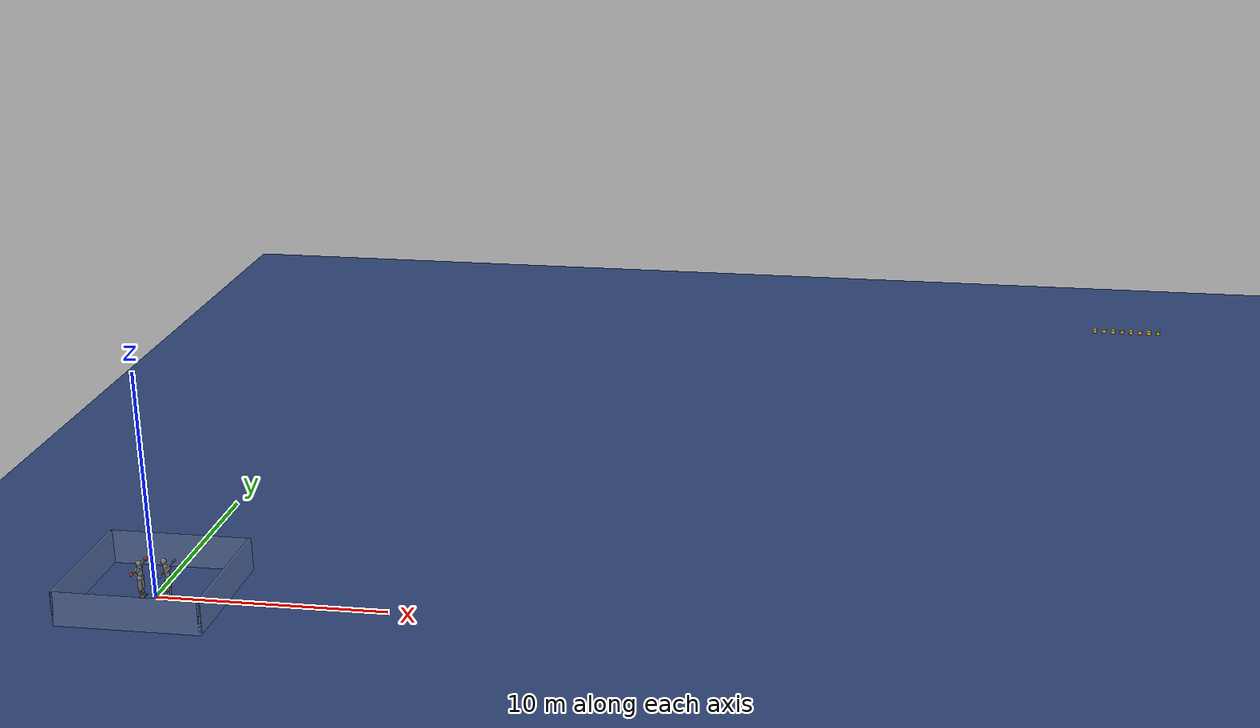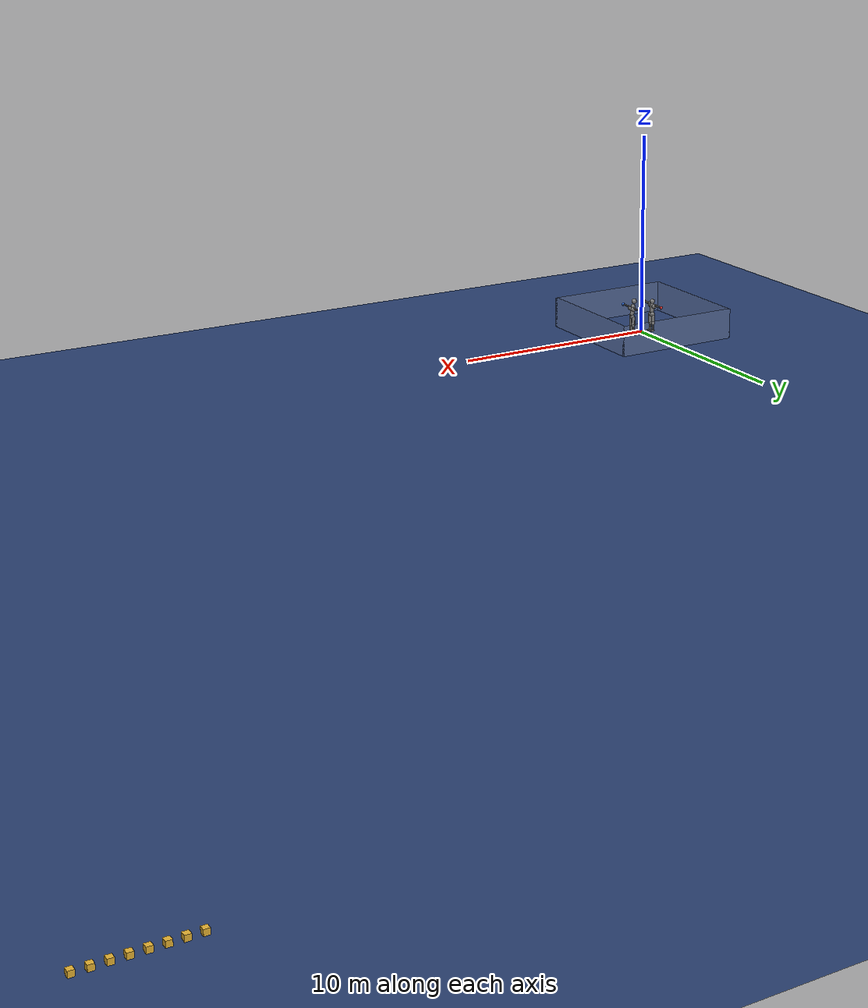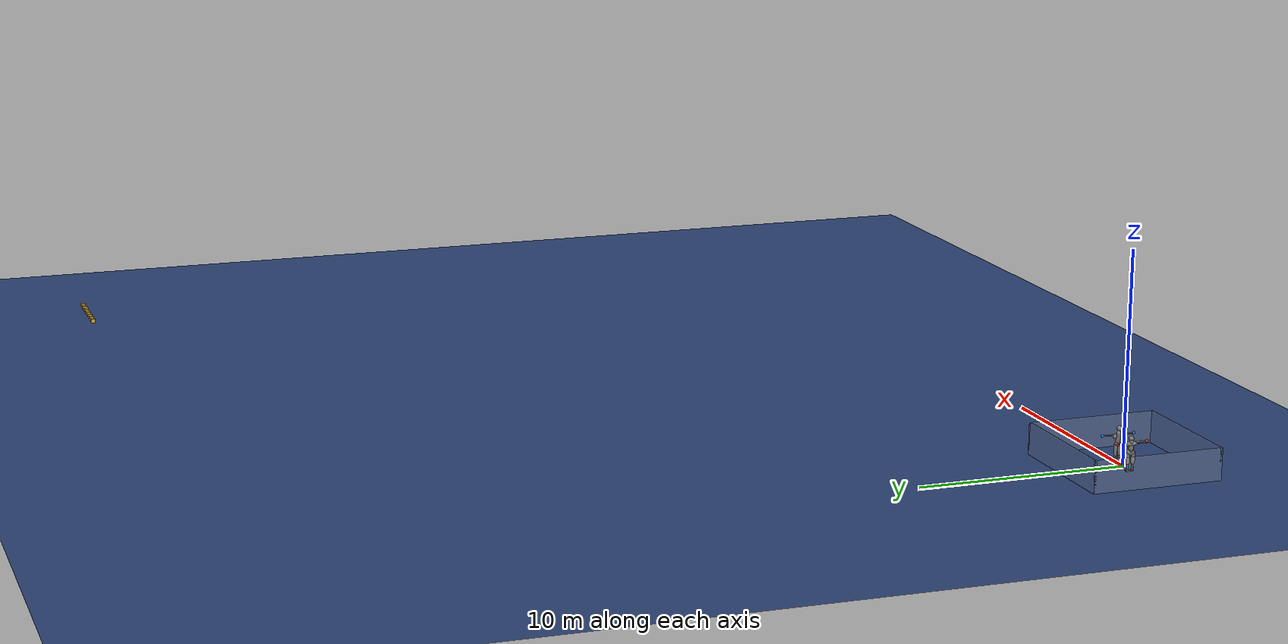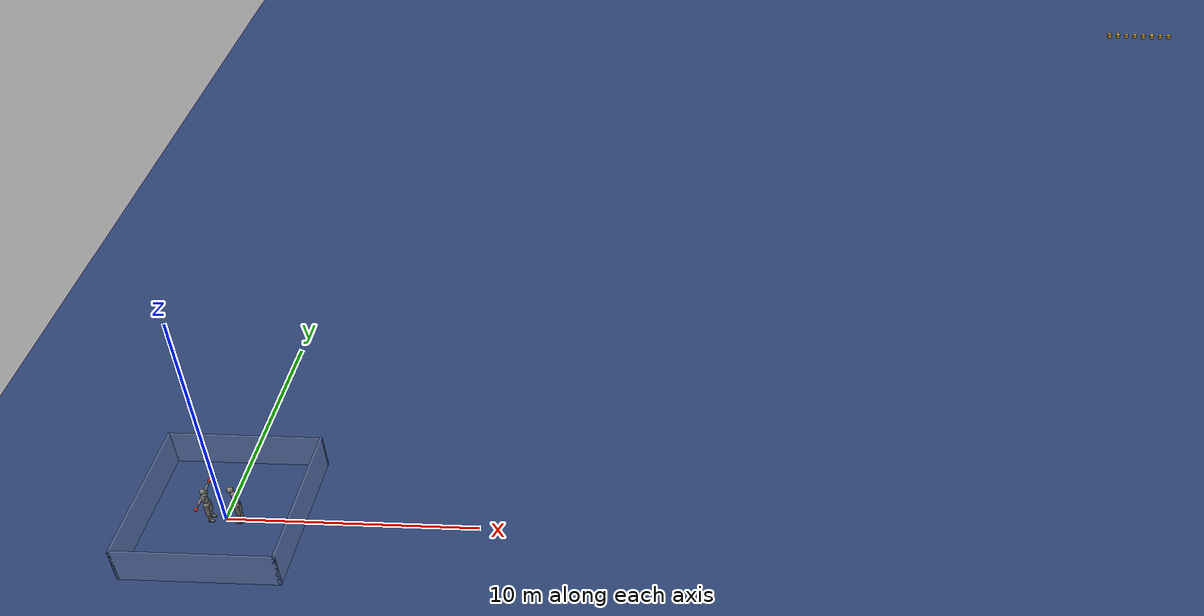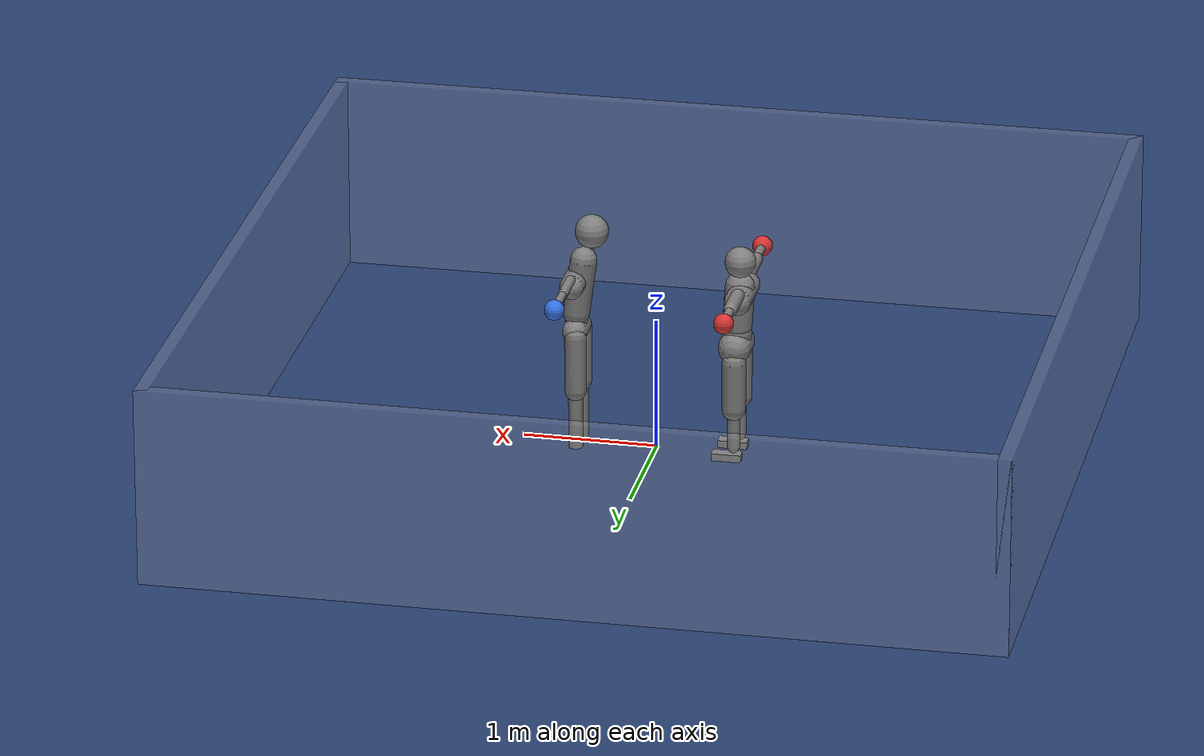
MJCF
<mujoco model="lilmatt_vs_zombie_spar">
  <compiler angle="degree" inertiafromgeom="true" autolimits="true"/>
  <option timestep="0.005" iterations="10" ls_iterations="10" integrator="implicitfast">
    <flag eulerdamp="disable"/>
  </option>
  <default>
    <geom contype="1" conaffinity="1" condim="3" friction="1.0 0.005 0.0001" density="1000" margin="0"/>
    <joint limited="true"/>
    <position ctrllimited="true"/>
  </default>
  <asset>
    <texture name="grid" type="2d" builtin="checker" rgb1=".18 .28 .48" rgb2=".14 .22 .40" width="300" height="300"/>
    <material name="grid" texture="grid" texrepeat="6 6" reflectance="0"/>
  </asset>
  <worldbody>
    <light pos="0 0 5" dir="0 0 -1" directional="true"/>
    <geom name="floor" type="plane" size="0 0 0.05" material="grid" friction="1.0 0.005 0.0001"/>
    <geom name="rope_n" type="box" pos="0.0000 3.1000 0.7500" size="3.1500 0.0500 0.7500" rgba="0.8 0.8 0.8 0.15"/>
    <geom name="rope_s" type="box" pos="0.0000 -3.1000 0.7500" size="3.1500 0.0500 0.7500" rgba="0.8 0.8 0.8 0.15"/>
    <geom name="rope_e" type="box" pos="3.1000 0.0000 0.7500" size="0.0500 3.1500 0.7500" rgba="0.8 0.8 0.8 0.15"/>
    <geom name="rope_w" type="box" pos="-3.1000 0.0000 0.7500" size="0.0500 3.1500 0.7500" rgba="0.8 0.8 0.8 0.15"/>
    <body name="a_pelvis" pos="-0.6000 0.0000 0.8672" quat="1.00000 0 0 0.00000">
      <freejoint name="a_root"/>
      <geom name="a_pelvis_geom" type="capsule" fromto="0.0000 -0.0700 0.0000 0.0000 0.0700 0.0000" size="0.1228" mass="6.8132" />
      <geom name="a_pelvis_up" type="capsule" fromto="0.0000 0.0000 0.0000 -0.0066 0.0000 0.1058" size="0.1105" mass="4.6036" />
      <body name="a_torso" pos="-0.0066 0.0000 0.1258">
        <joint name="a_abdomen_z" type="hinge" axis="0 0 1" range="-45 45" damping="0.5" armature="0.08" stiffness="0"/>
        <joint name="a_abdomen_y" type="hinge" axis="0 1 0" range="-60 30" damping="0.5" armature="0.08" stiffness="0"/>
        <joint name="a_abdomen_x" type="hinge" axis="1 0 0" range="-35 35" damping="0.5" armature="0.08" stiffness="0"/>
        <geom name="a_torso_geom" type="capsule" fromto="0.0000 0.0000 0.0200 -0.0181 0.0000 0.3354" size="0.1100" mass="28.5420" />
        <geom name="a_chest_geom" type="capsule" fromto="-0.0347 -0.1786 0.2850 -0.0347 0.1786 0.2850" size="0.0990" mass="0.5"/>
        <geom name="a_head_geom" type="sphere" pos="-0.0217 0.0000 0.5289" size="0.1155" mass="6.5124" />
        <body name="a_upper_arm_l" pos="-0.0434 0.2232 0.3563">
          <joint name="a_shoulder_x_l" type="hinge" axis="1 0 0" range="-170 30" damping="0.5" armature="0.03" stiffness="0"/>
          <joint name="a_shoulder_z_l" type="hinge" axis="0 0 1" range="-110 110" damping="0.5" armature="0.03" stiffness="0"/>
          <geom name="a_upper_arm_l_geom" type="capsule" fromto="0.0000 0.0000 0.0000 0.0000 0.2758 0.0000" size="0.0508" mass="2.2512" />
          <body name="a_forearm_l" pos="0.0000 0.2758 0.0000">
            <joint name="a_elbow_l" type="hinge" axis="0 0 1" range="-150 0" damping="0.5" armature="0.02" stiffness="0"/>
            <geom name="a_forearm_l_geom" type="capsule" fromto="0.0000 0.0000 0.0000 0.0000 0.1970 0.0000" size="0.0332" mass="1.2864" />
            <geom name="a_glove_l" type="sphere" pos="0.0000 0.2645 0.0000" size="0.0750" mass="0.7654" rgba="0.85 0.2 0.2 1"/>
          </body>
        </body>
        <body name="a_upper_arm_r" pos="-0.0434 -0.2232 0.3563">
          <joint name="a_shoulder_x_r" type="hinge" axis="1 0 0" range="-30 170" damping="0.5" armature="0.03" stiffness="0"/>
          <joint name="a_shoulder_z_r" type="hinge" axis="0 0 1" range="-110 110" damping="0.5" armature="0.03" stiffness="0"/>
          <geom name="a_upper_arm_r_geom" type="capsule" fromto="0.0000 0.0000 0.0000 0.0000 -0.2758 0.0000" size="0.0508" mass="2.2512" />
          <body name="a_forearm_r" pos="0.0000 -0.2758 0.0000">
            <joint name="a_elbow_r" type="hinge" axis="0 0 1" range="0 150" damping="0.5" armature="0.02" stiffness="0"/>
            <geom name="a_forearm_r_geom" type="capsule" fromto="0.0000 0.0000 0.0000 0.0000 -0.1970 0.0000" size="0.0332" mass="1.2864" />
            <geom name="a_glove_r" type="sphere" pos="0.0000 -0.2645 0.0000" size="0.0750" mass="0.7654" rgba="0.85 0.2 0.2 1"/>
          </body>
        </body>
      </body>
      <body name="a_thigh_l" pos="-0.0061 0.1244 -0.0919">
        <joint name="a_hip_x_l" type="hinge" axis="1 0 0" range="-40 40" damping="0.5" armature="0.1" stiffness="0"/>
        <joint name="a_hip_z_l" type="hinge" axis="0 0 1" range="-35 35" damping="0.5" armature="0.1" stiffness="0"/>
        <joint name="a_hip_y_l" type="hinge" axis="0 1 0" range="-120 30" damping="0.5" armature="0.1" stiffness="0"/>
        <geom name="a_thigh_l_geom" type="capsule" fromto="0.0000 0.0000 0.0000 0.0000 0.0000 -0.3718" size="0.0895" mass="8.0400" />
        <body name="a_shin_l" pos="0.0000 0.0000 -0.3718">
          <joint name="a_knee_l" type="hinge" axis="0 1 0" range="0 150" damping="0.5" armature="0.1" stiffness="0"/>
          <geom name="a_shin_l_geom" type="capsule" fromto="0.0000 0.0000 0.0000 0.0000 0.0000 -0.3036" size="0.0462" mass="3.7386" />
          <body name="a_foot_l" pos="0.0000 0.0000 -0.3036">
            <joint name="a_ankle_y_l" type="hinge" axis="0 1 0" range="-20 50" damping="0.5" armature="0.03" stiffness="0"/>
            <joint name="a_ankle_x_l" type="hinge" axis="1 0 0" range="-25 25" damping="0.5" armature="0.03" stiffness="0"/>
            <geom name="a_foot_l_geom" type="box" pos="0.0506 0.0000 -0.0797" size="0.1100 0.0450 0.0280" mass="1.1658" friction="1.0 0.005 0.0001"/>
            <site name="a_foot_l_site" pos="0.0506 0.0000 -0.0797" size="0.01"/>
          </body>
        </body>
      </body>
      <body name="a_thigh_r" pos="-0.0061 -0.1244 -0.0919">
        <joint name="a_hip_x_r" type="hinge" axis="1 0 0" range="-40 40" damping="0.5" armature="0.1" stiffness="0"/>
        <joint name="a_hip_z_r" type="hinge" axis="0 0 1" range="-35 35" damping="0.5" armature="0.1" stiffness="0"/>
        <joint name="a_hip_y_r" type="hinge" axis="0 1 0" range="-120 30" damping="0.5" armature="0.1" stiffness="0"/>
        <geom name="a_thigh_r_geom" type="capsule" fromto="0.0000 0.0000 0.0000 0.0000 0.0000 -0.3718" size="0.0895" mass="8.0400" />
        <body name="a_shin_r" pos="0.0000 0.0000 -0.3718">
          <joint name="a_knee_r" type="hinge" axis="0 1 0" range="0 150" damping="0.5" armature="0.1" stiffness="0"/>
          <geom name="a_shin_r_geom" type="capsule" fromto="0.0000 0.0000 0.0000 0.0000 0.0000 -0.3036" size="0.0462" mass="3.7386" />
          <body name="a_foot_r" pos="0.0000 0.0000 -0.3036">
            <joint name="a_ankle_y_r" type="hinge" axis="0 1 0" range="-20 50" damping="0.5" armature="0.03" stiffness="0"/>
            <joint name="a_ankle_x_r" type="hinge" axis="1 0 0" range="-25 25" damping="0.5" armature="0.03" stiffness="0"/>
            <geom name="a_foot_r_geom" type="box" pos="0.0506 0.0000 -0.0797" size="0.1100 0.0450 0.0280" mass="1.1658" friction="1.0 0.005 0.0001"/>
            <site name="a_foot_r_site" pos="0.0506 0.0000 -0.0797" size="0.01"/>
          </body>
        </body>
      </body>
    </body>
    <body name="b_pelvis" pos="0.6000 0.0000 0.8994" quat="0.00000 0 0 1.00000">
      <freejoint name="b_root"/>
      <geom name="b_pelvis_geom" type="capsule" fromto="0.0000 -0.0700 0.0000 0.0000 0.0700 0.0000" size="0.0937" mass="8.0010" />
      <geom name="b_pelvis_up" type="capsule" fromto="0.0000 0.0000 0.0000 -0.0021 0.0000 0.0858" size="0.0843" mass="4.8500" />
      <body name="b_torso" pos="-0.0021 0.0000 0.1058">
        <joint name="b_abdomen_z" type="hinge" axis="0 0 1" range="-45 45" damping="0.5" armature="0.08" stiffness="0"/>
        <joint name="b_abdomen_y" type="hinge" axis="0 1 0" range="-60 30" damping="0.5" armature="0.08" stiffness="0"/>
        <joint name="b_abdomen_x" type="hinge" axis="1 0 0" range="-35 35" damping="0.5" armature="0.08" stiffness="0"/>
        <geom name="b_torso_geom" type="capsule" fromto="0.0000 0.0000 0.0200 0.0555 0.0000 0.4396" size="0.1001" mass="32.1275" />
        <geom name="b_chest_geom" type="capsule" fromto="0.0001 -0.1682 0.2861 0.0001 0.1682 0.2861" size="0.0901" mass="0.5"/>
        <geom name="b_head_geom" type="sphere" pos="0.1184 0.0000 0.6737" size="0.1250" mass="7.3305" />
        <body name="b_upper_arm_l" pos="0.0001 0.2102 0.3576">
          <joint name="b_shoulder_x_l" type="hinge" axis="1 0 0" range="-170 30" damping="0.5" armature="0.03" stiffness="0"/>
          <joint name="b_shoulder_z_l" type="hinge" axis="0 0 1" range="-110 110" damping="0.5" armature="0.03" stiffness="0"/>
          <geom name="b_upper_arm_l_geom" type="capsule" fromto="0.0000 0.0000 0.0000 0.0000 0.2647 0.0000" size="0.0367" mass="2.5340" />
          <body name="b_forearm_l" pos="0.0000 0.2647 0.0000">
            <joint name="b_elbow_l" type="hinge" axis="0 0 1" range="-150 0" damping="0.5" armature="0.02" stiffness="0"/>
            <geom name="b_forearm_l_geom" type="capsule" fromto="0.0000 0.0000 0.0000 0.0000 0.2417 0.0000" size="0.0299" mass="1.4480" />
            <geom name="b_glove_l" type="sphere" pos="0.0000 0.3092 0.0000" size="0.0750" mass="0.8260" rgba="0.2 0.45 0.9 1"/>
          </body>
        </body>
        <body name="b_upper_arm_r" pos="0.0001 -0.2102 0.3576">
          <joint name="b_shoulder_x_r" type="hinge" axis="1 0 0" range="-30 170" damping="0.5" armature="0.03" stiffness="0"/>
          <joint name="b_shoulder_z_r" type="hinge" axis="0 0 1" range="-110 110" damping="0.5" armature="0.03" stiffness="0"/>
          <geom name="b_upper_arm_r_geom" type="capsule" fromto="0.0000 0.0000 0.0000 0.0000 -0.2647 0.0000" size="0.0367" mass="2.5340" />
          <body name="b_forearm_r" pos="0.0000 -0.2647 0.0000">
            <joint name="b_elbow_r" type="hinge" axis="0 0 1" range="0 150" damping="0.5" armature="0.02" stiffness="0"/>
            <geom name="b_forearm_r_geom" type="capsule" fromto="0.0000 0.0000 0.0000 0.0000 -0.2417 0.0000" size="0.0299" mass="1.4480" />
            <geom name="b_glove_r" type="sphere" pos="0.0000 -0.3092 0.0000" size="0.0750" mass="0.8260" rgba="0.2 0.45 0.9 1"/>
          </body>
        </body>
      </body>
      <body name="b_thigh_l" pos="0.0106 0.1020 -0.0264">
        <joint name="b_hip_x_l" type="hinge" axis="1 0 0" range="-40 40" damping="0.5" armature="0.1" stiffness="0"/>
        <joint name="b_hip_z_l" type="hinge" axis="0 0 1" range="-35 35" damping="0.5" armature="0.1" stiffness="0"/>
        <joint name="b_hip_y_l" type="hinge" axis="0 1 0" range="-120 30" damping="0.5" armature="0.1" stiffness="0"/>
        <geom name="b_thigh_l_geom" type="capsule" fromto="0.0000 0.0000 0.0000 0.0000 0.0000 -0.4306" size="0.0812" mass="9.0500" />
        <body name="b_shin_l" pos="0.0000 0.0000 -0.4306">
          <joint name="b_knee_l" type="hinge" axis="0 1 0" range="0 150" damping="0.5" armature="0.1" stiffness="0"/>
          <geom name="b_shin_l_geom" type="capsule" fromto="0.0000 0.0000 0.0000 0.0000 0.0000 -0.4552" size="0.0535" mass="4.2082" />
          <body name="b_foot_l" pos="0.0000 0.0000 -0.4552">
            <joint name="b_ankle_y_l" type="hinge" axis="0 1 0" range="-20 50" damping="0.5" armature="0.03" stiffness="0"/>
            <joint name="b_ankle_x_l" type="hinge" axis="1 0 0" range="-25 25" damping="0.5" armature="0.03" stiffness="0"/>
            <geom name="b_foot_l_geom" type="box" pos="0.0570 0.0000 -0.0493" size="0.1239 0.0450 0.0280" mass="1.3123" friction="1.0 0.005 0.0001"/>
            <site name="b_foot_l_site" pos="0.0570 0.0000 -0.0493" size="0.01"/>
          </body>
        </body>
      </body>
      <body name="b_thigh_r" pos="0.0106 -0.1020 -0.0264">
        <joint name="b_hip_x_r" type="hinge" axis="1 0 0" range="-40 40" damping="0.5" armature="0.1" stiffness="0"/>
        <joint name="b_hip_z_r" type="hinge" axis="0 0 1" range="-35 35" damping="0.5" armature="0.1" stiffness="0"/>
        <joint name="b_hip_y_r" type="hinge" axis="0 1 0" range="-120 30" damping="0.5" armature="0.1" stiffness="0"/>
        <geom name="b_thigh_r_geom" type="capsule" fromto="0.0000 0.0000 0.0000 0.0000 0.0000 -0.4306" size="0.0812" mass="9.0500" />
        <body name="b_shin_r" pos="0.0000 0.0000 -0.4306">
          <joint name="b_knee_r" type="hinge" axis="0 1 0" range="0 150" damping="0.5" armature="0.1" stiffness="0"/>
          <geom name="b_shin_r_geom" type="capsule" fromto="0.0000 0.0000 0.0000 0.0000 0.0000 -0.4552" size="0.0535" mass="4.2082" />
          <body name="b_foot_r" pos="0.0000 0.0000 -0.4552">
            <joint name="b_ankle_y_r" type="hinge" axis="0 1 0" range="-20 50" damping="0.5" armature="0.03" stiffness="0"/>
            <joint name="b_ankle_x_r" type="hinge" axis="1 0 0" range="-25 25" damping="0.5" armature="0.03" stiffness="0"/>
            <geom name="b_foot_r_geom" type="box" pos="0.0570 0.0000 -0.0493" size="0.1239 0.0450 0.0280" mass="1.3123" friction="1.0 0.005 0.0001"/>
            <site name="b_foot_r_site" pos="0.0570 0.0000 -0.0493" size="0.01"/>
          </body>
        </body>
      </body>
    </body>
    <body name="cube_0" pos="40.0000 40.0000 0.3000"><freejoint name="cube_0"/><geom name="cube_0_geom" type="box" size="0.1 0.1 0.1" mass="1.0" rgba="0.9 0.7 0.2 1"/></body>
    <body name="cube_1" pos="40.5000 40.0000 0.3000"><freejoint name="cube_1"/><geom name="cube_1_geom" type="box" size="0.1 0.1 0.1" mass="1.0" rgba="0.9 0.7 0.2 1"/></body>
    <body name="cube_2" pos="41.0000 40.0000 0.3000"><freejoint name="cube_2"/><geom name="cube_2_geom" type="box" size="0.1 0.1 0.1" mass="1.0" rgba="0.9 0.7 0.2 1"/></body>
    <body name="cube_3" pos="41.5000 40.0000 0.3000"><freejoint name="cube_3"/><geom name="cube_3_geom" type="box" size="0.1 0.1 0.1" mass="1.0" rgba="0.9 0.7 0.2 1"/></body>
    <body name="cube_4" pos="42.0000 40.0000 0.3000"><freejoint name="cube_4"/><geom name="cube_4_geom" type="box" size="0.1 0.1 0.1" mass="1.0" rgba="0.9 0.7 0.2 1"/></body>
    <body name="cube_5" pos="42.5000 40.0000 0.3000"><freejoint name="cube_5"/><geom name="cube_5_geom" type="box" size="0.1 0.1 0.1" mass="1.0" rgba="0.9 0.7 0.2 1"/></body>
    <body name="cube_6" pos="43.0000 40.0000 0.3000"><freejoint name="cube_6"/><geom name="cube_6_geom" type="box" size="0.1 0.1 0.1" mass="1.0" rgba="0.9 0.7 0.2 1"/></body>
    <body name="cube_7" pos="43.5000 40.0000 0.3000"><freejoint name="cube_7"/><geom name="cube_7_geom" type="box" size="0.1 0.1 0.1" mass="1.0" rgba="0.9 0.7 0.2 1"/></body>
  </worldbody>
  <contact>
    <exclude body1="a_pelvis" body2="a_torso"/>
    <exclude body1="a_pelvis" body2="a_thigh_l"/>
    <exclude body1="a_thigh_l" body2="a_shin_l"/>
    <exclude body1="a_shin_l" body2="a_foot_l"/>
    <exclude body1="a_torso" body2="a_upper_arm_l"/>
    <exclude body1="a_upper_arm_l" body2="a_forearm_l"/>
    <exclude body1="a_pelvis" body2="a_thigh_r"/>
    <exclude body1="a_thigh_r" body2="a_shin_r"/>
    <exclude body1="a_shin_r" body2="a_foot_r"/>
    <exclude body1="a_torso" body2="a_upper_arm_r"/>
    <exclude body1="a_upper_arm_r" body2="a_forearm_r"/>
    <exclude body1="b_pelvis" body2="b_torso"/>
    <exclude body1="b_pelvis" body2="b_thigh_l"/>
    <exclude body1="b_thigh_l" body2="b_shin_l"/>
    <exclude body1="b_shin_l" body2="b_foot_l"/>
    <exclude body1="b_torso" body2="b_upper_arm_l"/>
    <exclude body1="b_upper_arm_l" body2="b_forearm_l"/>
    <exclude body1="b_pelvis" body2="b_thigh_r"/>
    <exclude body1="b_thigh_r" body2="b_shin_r"/>
    <exclude body1="b_shin_r" body2="b_foot_r"/>
    <exclude body1="b_torso" body2="b_upper_arm_r"/>
    <exclude body1="b_upper_arm_r" body2="b_forearm_r"/>
  </contact>
  <actuator>
    <position name="a_abdomen_z" joint="a_abdomen_z" kp="368.1" kv="17.178" forcerange="-139.06 139.06" ctrlrange="-0.7854 0.7854"/>
    <position name="a_abdomen_y" joint="a_abdomen_y" kp="368.1" kv="17.178" forcerange="-139.06 139.06" ctrlrange="-1.0472 0.5236"/>
    <position name="a_abdomen_x" joint="a_abdomen_x" kp="368.1" kv="17.178" forcerange="-139.06 139.06" ctrlrange="-0.6109 0.6109"/>
    <position name="a_shoulder_x_l" joint="a_shoulder_x_l" kp="130.88" kv="6.544" forcerange="-81.8 81.8" ctrlrange="-2.9671 0.5236"/>
    <position name="a_shoulder_z_l" joint="a_shoulder_z_l" kp="130.88" kv="6.544" forcerange="-81.8 81.8" ctrlrange="-1.9199 1.9199"/>
    <position name="a_elbow_l" joint="a_elbow_l" kp="89.98" kv="4.499" forcerange="-57.26 57.26" ctrlrange="-2.6180 0.0000"/>
    <position name="a_shoulder_x_r" joint="a_shoulder_x_r" kp="130.88" kv="6.544" forcerange="-81.8 81.8" ctrlrange="-0.5236 2.9671"/>
    <position name="a_shoulder_z_r" joint="a_shoulder_z_r" kp="130.88" kv="6.544" forcerange="-81.8 81.8" ctrlrange="-1.9199 1.9199"/>
    <position name="a_elbow_r" joint="a_elbow_r" kp="89.98" kv="4.499" forcerange="-57.26 57.26" ctrlrange="0.0000 2.6180"/>
    <position name="a_hip_x_l" joint="a_hip_x_l" kp="490.8" kv="24.54" forcerange="-196.32 196.32" ctrlrange="-0.6981 0.6981"/>
    <position name="a_hip_z_l" joint="a_hip_z_l" kp="490.8" kv="24.54" forcerange="-196.32 196.32" ctrlrange="-0.6109 0.6109"/>
    <position name="a_hip_y_l" joint="a_hip_y_l" kp="490.8" kv="24.54" forcerange="-196.32 196.32" ctrlrange="-2.0944 0.5236"/>
    <position name="a_knee_l" joint="a_knee_l" kp="490.8" kv="24.54" forcerange="-212.68 212.68" ctrlrange="0.0000 2.6180"/>
    <position name="a_ankle_y_l" joint="a_ankle_y_l" kp="613.5" kv="24.54" forcerange="-179.96 179.96" ctrlrange="-0.3491 0.8727"/>
    <position name="a_ankle_x_l" joint="a_ankle_x_l" kp="65.44" kv="3.272" forcerange="-49.08 49.08" ctrlrange="-0.4363 0.4363"/>
    <position name="a_hip_x_r" joint="a_hip_x_r" kp="490.8" kv="24.54" forcerange="-196.32 196.32" ctrlrange="-0.6981 0.6981"/>
    <position name="a_hip_z_r" joint="a_hip_z_r" kp="490.8" kv="24.54" forcerange="-196.32 196.32" ctrlrange="-0.6109 0.6109"/>
    <position name="a_hip_y_r" joint="a_hip_y_r" kp="490.8" kv="24.54" forcerange="-196.32 196.32" ctrlrange="-2.0944 0.5236"/>
    <position name="a_knee_r" joint="a_knee_r" kp="490.8" kv="24.54" forcerange="-212.68 212.68" ctrlrange="0.0000 2.6180"/>
    <position name="a_ankle_y_r" joint="a_ankle_y_r" kp="613.5" kv="24.54" forcerange="-179.96 179.96" ctrlrange="-0.3491 0.8727"/>
    <position name="a_ankle_x_r" joint="a_ankle_x_r" kp="65.44" kv="3.272" forcerange="-49.08 49.08" ctrlrange="-0.4363 0.4363"/>
    <position name="b_abdomen_z" joint="b_abdomen_z" kp="453.15" kv="21.147" forcerange="-171.19 171.19" ctrlrange="-0.7854 0.7854"/>
    <position name="b_abdomen_y" joint="b_abdomen_y" kp="453.15" kv="21.147" forcerange="-171.19 171.19" ctrlrange="-1.0472 0.5236"/>
    <position name="b_abdomen_x" joint="b_abdomen_x" kp="453.15" kv="21.147" forcerange="-171.19 171.19" ctrlrange="-0.6109 0.6109"/>
    <position name="b_shoulder_x_l" joint="b_shoulder_x_l" kp="161.12" kv="8.056" forcerange="-100.7 100.7" ctrlrange="-2.9671 0.5236"/>
    <position name="b_shoulder_z_l" joint="b_shoulder_z_l" kp="161.12" kv="8.056" forcerange="-100.7 100.7" ctrlrange="-1.9199 1.9199"/>
    <position name="b_elbow_l" joint="b_elbow_l" kp="110.77" kv="5.538" forcerange="-70.49 70.49" ctrlrange="-2.6180 0.0000"/>
    <position name="b_shoulder_x_r" joint="b_shoulder_x_r" kp="161.12" kv="8.056" forcerange="-100.7 100.7" ctrlrange="-0.5236 2.9671"/>
    <position name="b_shoulder_z_r" joint="b_shoulder_z_r" kp="161.12" kv="8.056" forcerange="-100.7 100.7" ctrlrange="-1.9199 1.9199"/>
    <position name="b_elbow_r" joint="b_elbow_r" kp="110.77" kv="5.538" forcerange="-70.49 70.49" ctrlrange="0.0000 2.6180"/>
    <position name="b_hip_x_l" joint="b_hip_x_l" kp="604.2" kv="30.21" forcerange="-241.68 241.68" ctrlrange="-0.6981 0.6981"/>
    <position name="b_hip_z_l" joint="b_hip_z_l" kp="604.2" kv="30.21" forcerange="-241.68 241.68" ctrlrange="-0.6109 0.6109"/>
    <position name="b_hip_y_l" joint="b_hip_y_l" kp="604.2" kv="30.21" forcerange="-241.68 241.68" ctrlrange="-2.0944 0.5236"/>
    <position name="b_knee_l" joint="b_knee_l" kp="604.2" kv="30.21" forcerange="-261.82 261.82" ctrlrange="0.0000 2.6180"/>
    <position name="b_ankle_y_l" joint="b_ankle_y_l" kp="755.25" kv="30.21" forcerange="-221.54 221.54" ctrlrange="-0.3491 0.8727"/>
    <position name="b_ankle_x_l" joint="b_ankle_x_l" kp="80.56" kv="4.028" forcerange="-60.42 60.42" ctrlrange="-0.4363 0.4363"/>
    <position name="b_hip_x_r" joint="b_hip_x_r" kp="604.2" kv="30.21" forcerange="-241.68 241.68" ctrlrange="-0.6981 0.6981"/>
    <position name="b_hip_z_r" joint="b_hip_z_r" kp="604.2" kv="30.21" forcerange="-241.68 241.68" ctrlrange="-0.6109 0.6109"/>
    <position name="b_hip_y_r" joint="b_hip_y_r" kp="604.2" kv="30.21" forcerange="-241.68 241.68" ctrlrange="-2.0944 0.5236"/>
    <position name="b_knee_r" joint="b_knee_r" kp="604.2" kv="30.21" forcerange="-261.82 261.82" ctrlrange="0.0000 2.6180"/>
    <position name="b_ankle_y_r" joint="b_ankle_y_r" kp="755.25" kv="30.21" forcerange="-221.54 221.54" ctrlrange="-0.3491 0.8727"/>
    <position name="b_ankle_x_r" joint="b_ankle_x_r" kp="80.56" kv="4.028" forcerange="-60.42 60.42" ctrlrange="-0.4363 0.4363"/>
  </actuator>
  <keyframe>
    <key name="stand" qpos="-0.6000 0.0000 0.8593 1.00000 0 0 0.00000 0.0000 0.0000 0.0000 -1.3265 -0.7330 -1.9548 1.3265 0.7330 1.9548 0.0000 0.0000 -0.1621 0.4538 -0.2916 0.0000 0.0000 0.0000 -0.1621 0.4538 -0.2916 0.0000 0.6000 0.0000 0.9688 0.00000 0 0 1.00000 0.0000 0.0000 0.0000 -1.3265 -0.7330 -1.9548 1.3265 0.7330 1.9548 0.0000 0.0000 -0.2267 0.4538 -0.2271 0.0000 0.0000 0.0000 -0.2267 0.4538 -0.2271 0.0000 40.0000 40.0000 0.3000 1 0 0 0 40.5000 40.0000 0.3000 1 0 0 0 41.0000 40.0000 0.3000 1 0 0 0 41.5000 40.0000 0.3000 1 0 0 0 42.0000 40.0000 0.3000 1 0 0 0 42.5000 40.0000 0.3000 1 0 0 0 43.0000 40.0000 0.3000 1 0 0 0 43.5000 40.0000 0.3000 1 0 0 0"/>
  </keyframe>
</mujoco>
